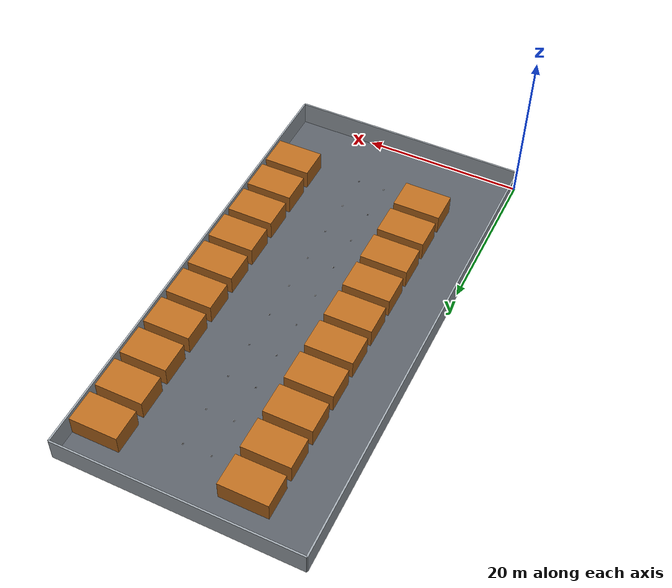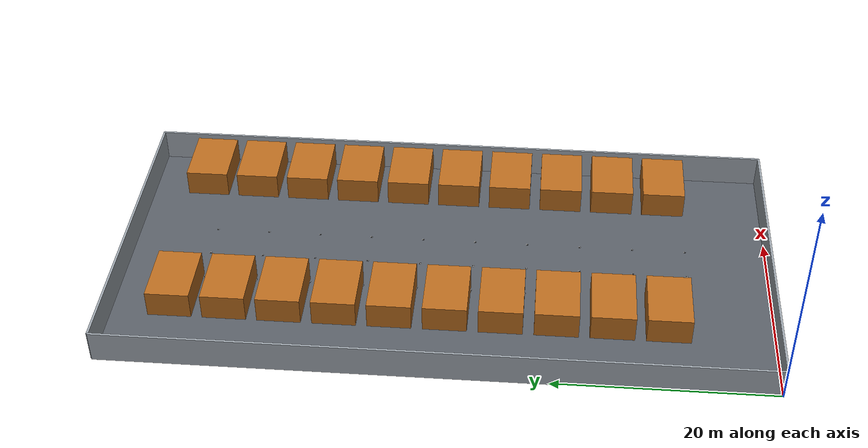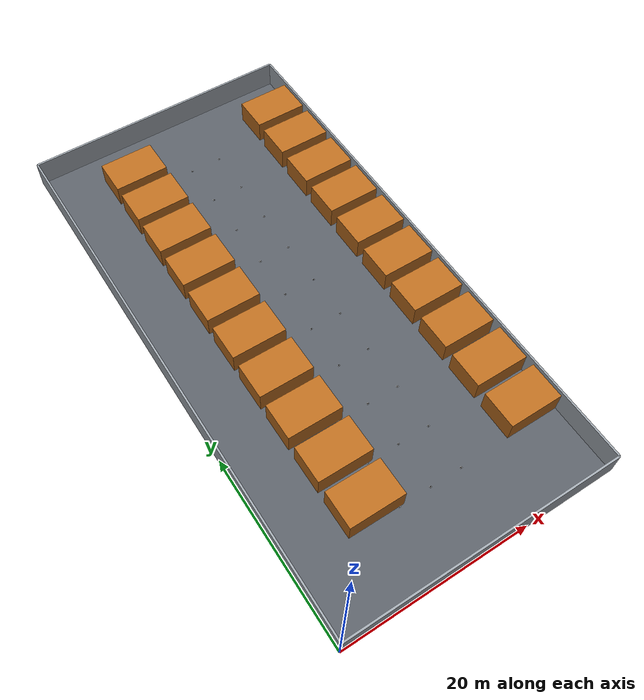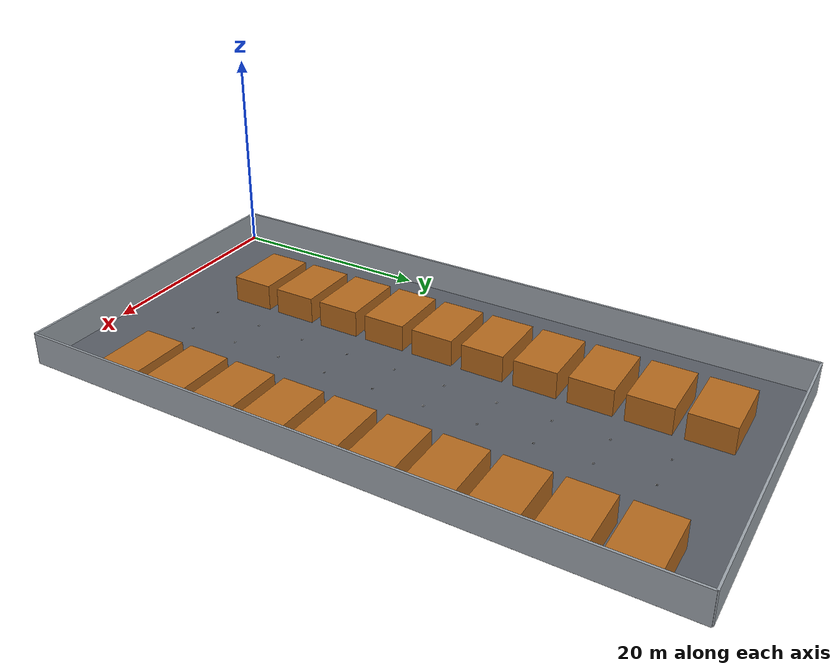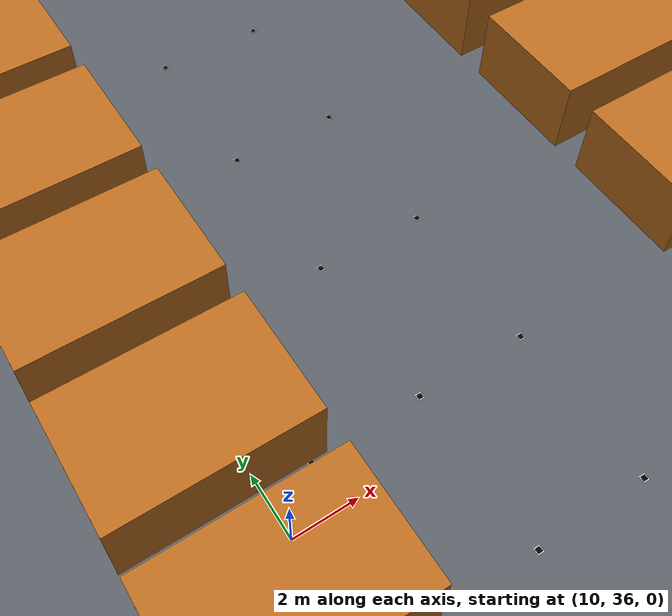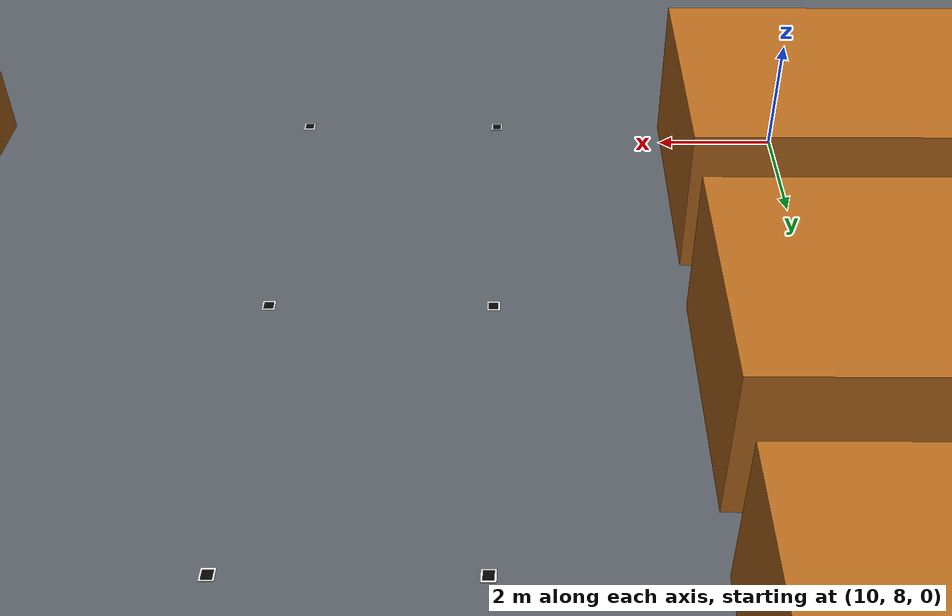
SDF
<?xml version="1.0"?>
<sdf version="1.6">
  <world name="warehouse_generated">
    <gravity>0 0 -9.81</gravity>
    <include><uri>model://sun</uri></include>
    <model name="floor_1">
      <static>true</static><pose>0 0 0 0 0 0</pose>
      <link name="link">
        <visual name="visual"><geometry><mesh><uri>file:///home/yahboom/swerve_bringup/generated/maps/WH-TEST-01/12/gazebo/models/floor_1/mesh.obj</uri><scale>1 1 1</scale></mesh></geometry><material><ambient>0.35 0.37 0.40 1</ambient><diffuse>0.35 0.37 0.40 1</diffuse></material></visual>
        <collision name="collision"><geometry><mesh><uri>file:///home/yahboom/swerve_bringup/generated/maps/WH-TEST-01/12/gazebo/models/floor_1/mesh.obj</uri><scale>1 1 1</scale></mesh></geometry></collision>
      </link>
    </model>
    <model name="floor_1_boundary_wall_0">
      <static>true</static>
      <pose>15 0 1.5 0 0 0</pose>
      <link name="link">
        <visual name="visual"><geometry><box><size>30 0.2 3</size></box></geometry><material><ambient>0.62 0.65 0.68 1</ambient><diffuse>0.62 0.65 0.68 1</diffuse></material></visual>
        <collision name="collision"><geometry><box><size>30 0.2 3</size></box></geometry></collision>
      </link>
    </model>
    <model name="floor_1_boundary_wall_1">
      <static>true</static>
      <pose>30 30 1.5 0 0 1.57079633</pose>
      <link name="link">
        <visual name="visual"><geometry><box><size>60 0.2 3</size></box></geometry><material><ambient>0.62 0.65 0.68 1</ambient><diffuse>0.62 0.65 0.68 1</diffuse></material></visual>
        <collision name="collision"><geometry><box><size>60 0.2 3</size></box></geometry></collision>
      </link>
    </model>
    <model name="floor_1_boundary_wall_2">
      <static>true</static>
      <pose>15 60 1.5 0 0 3.14159265</pose>
      <link name="link">
        <visual name="visual"><geometry><box><size>30 0.2 3</size></box></geometry><material><ambient>0.62 0.65 0.68 1</ambient><diffuse>0.62 0.65 0.68 1</diffuse></material></visual>
        <collision name="collision"><geometry><box><size>30 0.2 3</size></box></geometry></collision>
      </link>
    </model>
    <model name="floor_1_boundary_wall_3">
      <static>true</static>
      <pose>0 30 1.5 0 0 -1.57079633</pose>
      <link name="link">
        <visual name="visual"><geometry><box><size>60 0.2 3</size></box></geometry><material><ambient>0.62 0.65 0.68 1</ambient><diffuse>0.62 0.65 0.68 1</diffuse></material></visual>
        <collision name="collision"><geometry><box><size>60 0.2 3</size></box></geometry></collision>
      </link>
    </model>
    <model name="rack_SHELF-L01">
      <static>true</static>
      <pose>9 9.5 1.25 0 0 0</pose>
      <link name="link">
        <visual name="visual"><geometry><box><size>6 4 2.5</size></box></geometry><material><ambient>0.72 0.42 0.12 1</ambient><diffuse>0.72 0.42 0.12 1</diffuse></material></visual>
        <collision name="collision"><geometry><box><size>6 4 2.5</size></box></geometry></collision>
      </link>
    </model>
    <model name="rack_SHELF-R01">
      <static>true</static>
      <pose>27 9.5 1.25 0 0 0</pose>
      <link name="link">
        <visual name="visual"><geometry><box><size>6 4 2.5</size></box></geometry><material><ambient>0.72 0.42 0.12 1</ambient><diffuse>0.72 0.42 0.12 1</diffuse></material></visual>
        <collision name="collision"><geometry><box><size>6 4 2.5</size></box></geometry></collision>
      </link>
    </model>
    <model name="rack_SHELF-L02">
      <static>true</static>
      <pose>9 14.5 1.25 0 0 0</pose>
      <link name="link">
        <visual name="visual"><geometry><box><size>6 4 2.5</size></box></geometry><material><ambient>0.72 0.42 0.12 1</ambient><diffuse>0.72 0.42 0.12 1</diffuse></material></visual>
        <collision name="collision"><geometry><box><size>6 4 2.5</size></box></geometry></collision>
      </link>
    </model>
    <model name="rack_SHELF-R02">
      <static>true</static>
      <pose>27 14.5 1.25 0 0 0</pose>
      <link name="link">
        <visual name="visual"><geometry><box><size>6 4 2.5</size></box></geometry><material><ambient>0.72 0.42 0.12 1</ambient><diffuse>0.72 0.42 0.12 1</diffuse></material></visual>
        <collision name="collision"><geometry><box><size>6 4 2.5</size></box></geometry></collision>
      </link>
    </model>
    <model name="rack_SHELF-L03">
      <static>true</static>
      <pose>9 19.5 1.25 0 0 0</pose>
      <link name="link">
        <visual name="visual"><geometry><box><size>6 4 2.5</size></box></geometry><material><ambient>0.72 0.42 0.12 1</ambient><diffuse>0.72 0.42 0.12 1</diffuse></material></visual>
        <collision name="collision"><geometry><box><size>6 4 2.5</size></box></geometry></collision>
      </link>
    </model>
    <model name="rack_SHELF-R03">
      <static>true</static>
      <pose>27 19.5 1.25 0 0 0</pose>
      <link name="link">
        <visual name="visual"><geometry><box><size>6 4 2.5</size></box></geometry><material><ambient>0.72 0.42 0.12 1</ambient><diffuse>0.72 0.42 0.12 1</diffuse></material></visual>
        <collision name="collision"><geometry><box><size>6 4 2.5</size></box></geometry></collision>
      </link>
    </model>
    <model name="rack_SHELF-L04">
      <static>true</static>
      <pose>9 24.5 1.25 0 0 0</pose>
      <link name="link">
        <visual name="visual"><geometry><box><size>6 4 2.5</size></box></geometry><material><ambient>0.72 0.42 0.12 1</ambient><diffuse>0.72 0.42 0.12 1</diffuse></material></visual>
        <collision name="collision"><geometry><box><size>6 4 2.5</size></box></geometry></collision>
      </link>
    </model>
    <model name="rack_SHELF-R04">
      <static>true</static>
      <pose>27 24.5 1.25 0 0 0</pose>
      <link name="link">
        <visual name="visual"><geometry><box><size>6 4 2.5</size></box></geometry><material><ambient>0.72 0.42 0.12 1</ambient><diffuse>0.72 0.42 0.12 1</diffuse></material></visual>
        <collision name="collision"><geometry><box><size>6 4 2.5</size></box></geometry></collision>
      </link>
    </model>
    <model name="rack_SHELF-L05">
      <static>true</static>
      <pose>9 29.5 1.25 0 0 0</pose>
      <link name="link">
        <visual name="visual"><geometry><box><size>6 4 2.5</size></box></geometry><material><ambient>0.72 0.42 0.12 1</ambient><diffuse>0.72 0.42 0.12 1</diffuse></material></visual>
        <collision name="collision"><geometry><box><size>6 4 2.5</size></box></geometry></collision>
      </link>
    </model>
    <model name="rack_SHELF-R05">
      <static>true</static>
      <pose>27 29.5 1.25 0 0 0</pose>
      <link name="link">
        <visual name="visual"><geometry><box><size>6 4 2.5</size></box></geometry><material><ambient>0.72 0.42 0.12 1</ambient><diffuse>0.72 0.42 0.12 1</diffuse></material></visual>
        <collision name="collision"><geometry><box><size>6 4 2.5</size></box></geometry></collision>
      </link>
    </model>
    <model name="rack_SHELF-L06">
      <static>true</static>
      <pose>9 34.5 1.25 0 0 0</pose>
      <link name="link">
        <visual name="visual"><geometry><box><size>6 4 2.5</size></box></geometry><material><ambient>0.72 0.42 0.12 1</ambient><diffuse>0.72 0.42 0.12 1</diffuse></material></visual>
        <collision name="collision"><geometry><box><size>6 4 2.5</size></box></geometry></collision>
      </link>
    </model>
    <model name="rack_SHELF-R06">
      <static>true</static>
      <pose>27 34.5 1.25 0 0 0</pose>
      <link name="link">
        <visual name="visual"><geometry><box><size>6 4 2.5</size></box></geometry><material><ambient>0.72 0.42 0.12 1</ambient><diffuse>0.72 0.42 0.12 1</diffuse></material></visual>
        <collision name="collision"><geometry><box><size>6 4 2.5</size></box></geometry></collision>
      </link>
    </model>
    <model name="rack_SHELF-L07">
      <static>true</static>
      <pose>9 39.5 1.25 0 0 0</pose>
      <link name="link">
        <visual name="visual"><geometry><box><size>6 4 2.5</size></box></geometry><material><ambient>0.72 0.42 0.12 1</ambient><diffuse>0.72 0.42 0.12 1</diffuse></material></visual>
        <collision name="collision"><geometry><box><size>6 4 2.5</size></box></geometry></collision>
      </link>
    </model>
    <model name="rack_SHELF-R07">
      <static>true</static>
      <pose>27 39.5 1.25 0 0 0</pose>
      <link name="link">
        <visual name="visual"><geometry><box><size>6 4 2.5</size></box></geometry><material><ambient>0.72 0.42 0.12 1</ambient><diffuse>0.72 0.42 0.12 1</diffuse></material></visual>
        <collision name="collision"><geometry><box><size>6 4 2.5</size></box></geometry></collision>
      </link>
    </model>
    <model name="rack_SHELF-L08">
      <static>true</static>
      <pose>9 44.5 1.25 0 0 0</pose>
      <link name="link">
        <visual name="visual"><geometry><box><size>6 4 2.5</size></box></geometry><material><ambient>0.72 0.42 0.12 1</ambient><diffuse>0.72 0.42 0.12 1</diffuse></material></visual>
        <collision name="collision"><geometry><box><size>6 4 2.5</size></box></geometry></collision>
      </link>
    </model>
    <model name="rack_SHELF-R08">
      <static>true</static>
      <pose>27 44.5 1.25 0 0 0</pose>
      <link name="link">
        <visual name="visual"><geometry><box><size>6 4 2.5</size></box></geometry><material><ambient>0.72 0.42 0.12 1</ambient><diffuse>0.72 0.42 0.12 1</diffuse></material></visual>
        <collision name="collision"><geometry><box><size>6 4 2.5</size></box></geometry></collision>
      </link>
    </model>
    <model name="rack_SHELF-L09">
      <static>true</static>
      <pose>9 49.5 1.25 0 0 0</pose>
      <link name="link">
        <visual name="visual"><geometry><box><size>6 4 2.5</size></box></geometry><material><ambient>0.72 0.42 0.12 1</ambient><diffuse>0.72 0.42 0.12 1</diffuse></material></visual>
        <collision name="collision"><geometry><box><size>6 4 2.5</size></box></geometry></collision>
      </link>
    </model>
    <model name="rack_SHELF-R09">
      <static>true</static>
      <pose>27 49.5 1.25 0 0 0</pose>
      <link name="link">
        <visual name="visual"><geometry><box><size>6 4 2.5</size></box></geometry><material><ambient>0.72 0.42 0.12 1</ambient><diffuse>0.72 0.42 0.12 1</diffuse></material></visual>
        <collision name="collision"><geometry><box><size>6 4 2.5</size></box></geometry></collision>
      </link>
    </model>
    <model name="rack_SHELF-L10">
      <static>true</static>
      <pose>9 54.5 1.25 0 0 0</pose>
      <link name="link">
        <visual name="visual"><geometry><box><size>6 4 2.5</size></box></geometry><material><ambient>0.72 0.42 0.12 1</ambient><diffuse>0.72 0.42 0.12 1</diffuse></material></visual>
        <collision name="collision"><geometry><box><size>6 4 2.5</size></box></geometry></collision>
      </link>
    </model>
    <model name="rack_SHELF-R10">
      <static>true</static>
      <pose>27 54.5 1.25 0 0 0</pose>
      <link name="link">
        <visual name="visual"><geometry><box><size>6 4 2.5</size></box></geometry><material><ambient>0.72 0.42 0.12 1</ambient><diffuse>0.72 0.42 0.12 1</diffuse></material></visual>
        <collision name="collision"><geometry><box><size>6 4 2.5</size></box></geometry></collision>
      </link>
    </model>
    <model name="nav_tag_1101">
      <static>true</static><pose>11.5 7.5 0 0 0 1.57079633</pose>
      <link name="link">
        <visual name="substrate"><pose>0 0 0.003 0 0 0</pose><geometry><box><size>0.20 0.20 0.006</size></box></geometry><material><ambient>0.95 0.95 0.95 1</ambient><diffuse>0.95 0.95 0.95 1</diffuse></material></visual>
        <visual name="id_marker"><pose>0 0 0.007 0 0 0</pose><geometry><box><size>0.15 0.15 0.004</size></box></geometry><material><ambient>0.01 0.01 0.01 1</ambient><diffuse>0.01 0.01 0.01 1</diffuse></material></visual>
      </link>
    </model>
    <model name="nav_tag_1201">
      <static>true</static><pose>15 7.5 0 0 0 1.57079633</pose>
      <link name="link">
        <visual name="substrate"><pose>0 0 0.003 0 0 0</pose><geometry><box><size>0.20 0.20 0.006</size></box></geometry><material><ambient>0.95 0.95 0.95 1</ambient><diffuse>0.95 0.95 0.95 1</diffuse></material></visual>
        <visual name="id_marker"><pose>0 0 0.007 0 0 0</pose><geometry><box><size>0.15 0.15 0.004</size></box></geometry><material><ambient>0.01 0.01 0.01 1</ambient><diffuse>0.01 0.01 0.01 1</diffuse></material></visual>
      </link>
    </model>
    <model name="nav_tag_1301">
      <static>true</static><pose>18.5 7.5 0 0 0 1.57079633</pose>
      <link name="link">
        <visual name="substrate"><pose>0 0 0.003 0 0 0</pose><geometry><box><size>0.20 0.20 0.006</size></box></geometry><material><ambient>0.95 0.95 0.95 1</ambient><diffuse>0.95 0.95 0.95 1</diffuse></material></visual>
        <visual name="id_marker"><pose>0 0 0.007 0 0 0</pose><geometry><box><size>0.15 0.15 0.004</size></box></geometry><material><ambient>0.01 0.01 0.01 1</ambient><diffuse>0.01 0.01 0.01 1</diffuse></material></visual>
      </link>
    </model>
    <model name="nav_tag_1102">
      <static>true</static><pose>11.5 12.5 0 0 0 1.57079633</pose>
      <link name="link">
        <visual name="substrate"><pose>0 0 0.003 0 0 0</pose><geometry><box><size>0.20 0.20 0.006</size></box></geometry><material><ambient>0.95 0.95 0.95 1</ambient><diffuse>0.95 0.95 0.95 1</diffuse></material></visual>
        <visual name="id_marker"><pose>0 0 0.007 0 0 0</pose><geometry><box><size>0.15 0.15 0.004</size></box></geometry><material><ambient>0.01 0.01 0.01 1</ambient><diffuse>0.01 0.01 0.01 1</diffuse></material></visual>
      </link>
    </model>
    <model name="nav_tag_1202">
      <static>true</static><pose>15 12.5 0 0 0 1.57079633</pose>
      <link name="link">
        <visual name="substrate"><pose>0 0 0.003 0 0 0</pose><geometry><box><size>0.20 0.20 0.006</size></box></geometry><material><ambient>0.95 0.95 0.95 1</ambient><diffuse>0.95 0.95 0.95 1</diffuse></material></visual>
        <visual name="id_marker"><pose>0 0 0.007 0 0 0</pose><geometry><box><size>0.15 0.15 0.004</size></box></geometry><material><ambient>0.01 0.01 0.01 1</ambient><diffuse>0.01 0.01 0.01 1</diffuse></material></visual>
      </link>
    </model>
    <model name="nav_tag_1302">
      <static>true</static><pose>18.5 12.5 0 0 0 1.57079633</pose>
      <link name="link">
        <visual name="substrate"><pose>0 0 0.003 0 0 0</pose><geometry><box><size>0.20 0.20 0.006</size></box></geometry><material><ambient>0.95 0.95 0.95 1</ambient><diffuse>0.95 0.95 0.95 1</diffuse></material></visual>
        <visual name="id_marker"><pose>0 0 0.007 0 0 0</pose><geometry><box><size>0.15 0.15 0.004</size></box></geometry><material><ambient>0.01 0.01 0.01 1</ambient><diffuse>0.01 0.01 0.01 1</diffuse></material></visual>
      </link>
    </model>
    <model name="nav_tag_1103">
      <static>true</static><pose>11.5 17.5 0 0 0 1.57079633</pose>
      <link name="link">
        <visual name="substrate"><pose>0 0 0.003 0 0 0</pose><geometry><box><size>0.20 0.20 0.006</size></box></geometry><material><ambient>0.95 0.95 0.95 1</ambient><diffuse>0.95 0.95 0.95 1</diffuse></material></visual>
        <visual name="id_marker"><pose>0 0 0.007 0 0 0</pose><geometry><box><size>0.15 0.15 0.004</size></box></geometry><material><ambient>0.01 0.01 0.01 1</ambient><diffuse>0.01 0.01 0.01 1</diffuse></material></visual>
      </link>
    </model>
    <model name="nav_tag_1203">
      <static>true</static><pose>15 17.5 0 0 0 1.57079633</pose>
      <link name="link">
        <visual name="substrate"><pose>0 0 0.003 0 0 0</pose><geometry><box><size>0.20 0.20 0.006</size></box></geometry><material><ambient>0.95 0.95 0.95 1</ambient><diffuse>0.95 0.95 0.95 1</diffuse></material></visual>
        <visual name="id_marker"><pose>0 0 0.007 0 0 0</pose><geometry><box><size>0.15 0.15 0.004</size></box></geometry><material><ambient>0.01 0.01 0.01 1</ambient><diffuse>0.01 0.01 0.01 1</diffuse></material></visual>
      </link>
    </model>
    <model name="nav_tag_1303">
      <static>true</static><pose>18.5 17.5 0 0 0 1.57079633</pose>
      <link name="link">
        <visual name="substrate"><pose>0 0 0.003 0 0 0</pose><geometry><box><size>0.20 0.20 0.006</size></box></geometry><material><ambient>0.95 0.95 0.95 1</ambient><diffuse>0.95 0.95 0.95 1</diffuse></material></visual>
        <visual name="id_marker"><pose>0 0 0.007 0 0 0</pose><geometry><box><size>0.15 0.15 0.004</size></box></geometry><material><ambient>0.01 0.01 0.01 1</ambient><diffuse>0.01 0.01 0.01 1</diffuse></material></visual>
      </link>
    </model>
    <model name="nav_tag_1104">
      <static>true</static><pose>11.5 22.5 0 0 0 1.57079633</pose>
      <link name="link">
        <visual name="substrate"><pose>0 0 0.003 0 0 0</pose><geometry><box><size>0.20 0.20 0.006</size></box></geometry><material><ambient>0.95 0.95 0.95 1</ambient><diffuse>0.95 0.95 0.95 1</diffuse></material></visual>
        <visual name="id_marker"><pose>0 0 0.007 0 0 0</pose><geometry><box><size>0.15 0.15 0.004</size></box></geometry><material><ambient>0.01 0.01 0.01 1</ambient><diffuse>0.01 0.01 0.01 1</diffuse></material></visual>
      </link>
    </model>
    <model name="nav_tag_1204">
      <static>true</static><pose>15 22.5 0 0 0 1.57079633</pose>
      <link name="link">
        <visual name="substrate"><pose>0 0 0.003 0 0 0</pose><geometry><box><size>0.20 0.20 0.006</size></box></geometry><material><ambient>0.95 0.95 0.95 1</ambient><diffuse>0.95 0.95 0.95 1</diffuse></material></visual>
        <visual name="id_marker"><pose>0 0 0.007 0 0 0</pose><geometry><box><size>0.15 0.15 0.004</size></box></geometry><material><ambient>0.01 0.01 0.01 1</ambient><diffuse>0.01 0.01 0.01 1</diffuse></material></visual>
      </link>
    </model>
    <model name="nav_tag_1304">
      <static>true</static><pose>18.5 22.5 0 0 0 1.57079633</pose>
      <link name="link">
        <visual name="substrate"><pose>0 0 0.003 0 0 0</pose><geometry><box><size>0.20 0.20 0.006</size></box></geometry><material><ambient>0.95 0.95 0.95 1</ambient><diffuse>0.95 0.95 0.95 1</diffuse></material></visual>
        <visual name="id_marker"><pose>0 0 0.007 0 0 0</pose><geometry><box><size>0.15 0.15 0.004</size></box></geometry><material><ambient>0.01 0.01 0.01 1</ambient><diffuse>0.01 0.01 0.01 1</diffuse></material></visual>
      </link>
    </model>
    <model name="nav_tag_1105">
      <static>true</static><pose>11.5 27.5 0 0 0 1.57079633</pose>
      <link name="link">
        <visual name="substrate"><pose>0 0 0.003 0 0 0</pose><geometry><box><size>0.20 0.20 0.006</size></box></geometry><material><ambient>0.95 0.95 0.95 1</ambient><diffuse>0.95 0.95 0.95 1</diffuse></material></visual>
        <visual name="id_marker"><pose>0 0 0.007 0 0 0</pose><geometry><box><size>0.15 0.15 0.004</size></box></geometry><material><ambient>0.01 0.01 0.01 1</ambient><diffuse>0.01 0.01 0.01 1</diffuse></material></visual>
      </link>
    </model>
    <model name="nav_tag_1205">
      <static>true</static><pose>15 27.5 0 0 0 1.57079633</pose>
      <link name="link">
        <visual name="substrate"><pose>0 0 0.003 0 0 0</pose><geometry><box><size>0.20 0.20 0.006</size></box></geometry><material><ambient>0.95 0.95 0.95 1</ambient><diffuse>0.95 0.95 0.95 1</diffuse></material></visual>
        <visual name="id_marker"><pose>0 0 0.007 0 0 0</pose><geometry><box><size>0.15 0.15 0.004</size></box></geometry><material><ambient>0.01 0.01 0.01 1</ambient><diffuse>0.01 0.01 0.01 1</diffuse></material></visual>
      </link>
    </model>
    <model name="nav_tag_1305">
      <static>true</static><pose>18.5 27.5 0 0 0 1.57079633</pose>
      <link name="link">
        <visual name="substrate"><pose>0 0 0.003 0 0 0</pose><geometry><box><size>0.20 0.20 0.006</size></box></geometry><material><ambient>0.95 0.95 0.95 1</ambient><diffuse>0.95 0.95 0.95 1</diffuse></material></visual>
        <visual name="id_marker"><pose>0 0 0.007 0 0 0</pose><geometry><box><size>0.15 0.15 0.004</size></box></geometry><material><ambient>0.01 0.01 0.01 1</ambient><diffuse>0.01 0.01 0.01 1</diffuse></material></visual>
      </link>
    </model>
    <model name="nav_tag_1106">
      <static>true</static><pose>11.5 32.5 0 0 0 1.57079633</pose>
      <link name="link">
        <visual name="substrate"><pose>0 0 0.003 0 0 0</pose><geometry><box><size>0.20 0.20 0.006</size></box></geometry><material><ambient>0.95 0.95 0.95 1</ambient><diffuse>0.95 0.95 0.95 1</diffuse></material></visual>
        <visual name="id_marker"><pose>0 0 0.007 0 0 0</pose><geometry><box><size>0.15 0.15 0.004</size></box></geometry><material><ambient>0.01 0.01 0.01 1</ambient><diffuse>0.01 0.01 0.01 1</diffuse></material></visual>
      </link>
    </model>
    <model name="nav_tag_1206">
      <static>true</static><pose>15 32.5 0 0 0 1.57079633</pose>
      <link name="link">
        <visual name="substrate"><pose>0 0 0.003 0 0 0</pose><geometry><box><size>0.20 0.20 0.006</size></box></geometry><material><ambient>0.95 0.95 0.95 1</ambient><diffuse>0.95 0.95 0.95 1</diffuse></material></visual>
        <visual name="id_marker"><pose>0 0 0.007 0 0 0</pose><geometry><box><size>0.15 0.15 0.004</size></box></geometry><material><ambient>0.01 0.01 0.01 1</ambient><diffuse>0.01 0.01 0.01 1</diffuse></material></visual>
      </link>
    </model>
    <model name="nav_tag_1306">
      <static>true</static><pose>18.5 32.5 0 0 0 1.57079633</pose>
      <link name="link">
        <visual name="substrate"><pose>0 0 0.003 0 0 0</pose><geometry><box><size>0.20 0.20 0.006</size></box></geometry><material><ambient>0.95 0.95 0.95 1</ambient><diffuse>0.95 0.95 0.95 1</diffuse></material></visual>
        <visual name="id_marker"><pose>0 0 0.007 0 0 0</pose><geometry><box><size>0.15 0.15 0.004</size></box></geometry><material><ambient>0.01 0.01 0.01 1</ambient><diffuse>0.01 0.01 0.01 1</diffuse></material></visual>
      </link>
    </model>
    <model name="nav_tag_1107">
      <static>true</static><pose>11.5 37.5 0 0 0 1.57079633</pose>
      <link name="link">
        <visual name="substrate"><pose>0 0 0.003 0 0 0</pose><geometry><box><size>0.20 0.20 0.006</size></box></geometry><material><ambient>0.95 0.95 0.95 1</ambient><diffuse>0.95 0.95 0.95 1</diffuse></material></visual>
        <visual name="id_marker"><pose>0 0 0.007 0 0 0</pose><geometry><box><size>0.15 0.15 0.004</size></box></geometry><material><ambient>0.01 0.01 0.01 1</ambient><diffuse>0.01 0.01 0.01 1</diffuse></material></visual>
      </link>
    </model>
    <model name="nav_tag_1207">
      <static>true</static><pose>15 37.5 0 0 0 1.57079633</pose>
      <link name="link">
        <visual name="substrate"><pose>0 0 0.003 0 0 0</pose><geometry><box><size>0.20 0.20 0.006</size></box></geometry><material><ambient>0.95 0.95 0.95 1</ambient><diffuse>0.95 0.95 0.95 1</diffuse></material></visual>
        <visual name="id_marker"><pose>0 0 0.007 0 0 0</pose><geometry><box><size>0.15 0.15 0.004</size></box></geometry><material><ambient>0.01 0.01 0.01 1</ambient><diffuse>0.01 0.01 0.01 1</diffuse></material></visual>
      </link>
    </model>
    <model name="nav_tag_1307">
      <static>true</static><pose>18.5 37.5 0 0 0 1.57079633</pose>
      <link name="link">
        <visual name="substrate"><pose>0 0 0.003 0 0 0</pose><geometry><box><size>0.20 0.20 0.006</size></box></geometry><material><ambient>0.95 0.95 0.95 1</ambient><diffuse>0.95 0.95 0.95 1</diffuse></material></visual>
        <visual name="id_marker"><pose>0 0 0.007 0 0 0</pose><geometry><box><size>0.15 0.15 0.004</size></box></geometry><material><ambient>0.01 0.01 0.01 1</ambient><diffuse>0.01 0.01 0.01 1</diffuse></material></visual>
      </link>
    </model>
    <model name="nav_tag_1108">
      <static>true</static><pose>11.5 42.5 0 0 0 1.57079633</pose>
      <link name="link">
        <visual name="substrate"><pose>0 0 0.003 0 0 0</pose><geometry><box><size>0.20 0.20 0.006</size></box></geometry><material><ambient>0.95 0.95 0.95 1</ambient><diffuse>0.95 0.95 0.95 1</diffuse></material></visual>
        <visual name="id_marker"><pose>0 0 0.007 0 0 0</pose><geometry><box><size>0.15 0.15 0.004</size></box></geometry><material><ambient>0.01 0.01 0.01 1</ambient><diffuse>0.01 0.01 0.01 1</diffuse></material></visual>
      </link>
    </model>
    <model name="nav_tag_1208">
      <static>true</static><pose>15 42.5 0 0 0 1.57079633</pose>
      <link name="link">
        <visual name="substrate"><pose>0 0 0.003 0 0 0</pose><geometry><box><size>0.20 0.20 0.006</size></box></geometry><material><ambient>0.95 0.95 0.95 1</ambient><diffuse>0.95 0.95 0.95 1</diffuse></material></visual>
        <visual name="id_marker"><pose>0 0 0.007 0 0 0</pose><geometry><box><size>0.15 0.15 0.004</size></box></geometry><material><ambient>0.01 0.01 0.01 1</ambient><diffuse>0.01 0.01 0.01 1</diffuse></material></visual>
      </link>
    </model>
    <model name="nav_tag_1308">
      <static>true</static><pose>18.5 42.5 0 0 0 1.57079633</pose>
      <link name="link">
        <visual name="substrate"><pose>0 0 0.003 0 0 0</pose><geometry><box><size>0.20 0.20 0.006</size></box></geometry><material><ambient>0.95 0.95 0.95 1</ambient><diffuse>0.95 0.95 0.95 1</diffuse></material></visual>
        <visual name="id_marker"><pose>0 0 0.007 0 0 0</pose><geometry><box><size>0.15 0.15 0.004</size></box></geometry><material><ambient>0.01 0.01 0.01 1</ambient><diffuse>0.01 0.01 0.01 1</diffuse></material></visual>
      </link>
    </model>
    <model name="nav_tag_1109">
      <static>true</static><pose>11.5 47.5 0 0 0 1.57079633</pose>
      <link name="link">
        <visual name="substrate"><pose>0 0 0.003 0 0 0</pose><geometry><box><size>0.20 0.20 0.006</size></box></geometry><material><ambient>0.95 0.95 0.95 1</ambient><diffuse>0.95 0.95 0.95 1</diffuse></material></visual>
        <visual name="id_marker"><pose>0 0 0.007 0 0 0</pose><geometry><box><size>0.15 0.15 0.004</size></box></geometry><material><ambient>0.01 0.01 0.01 1</ambient><diffuse>0.01 0.01 0.01 1</diffuse></material></visual>
      </link>
    </model>
    <model name="nav_tag_1209">
      <static>true</static><pose>15 47.5 0 0 0 1.57079633</pose>
      <link name="link">
        <visual name="substrate"><pose>0 0 0.003 0 0 0</pose><geometry><box><size>0.20 0.20 0.006</size></box></geometry><material><ambient>0.95 0.95 0.95 1</ambient><diffuse>0.95 0.95 0.95 1</diffuse></material></visual>
        <visual name="id_marker"><pose>0 0 0.007 0 0 0</pose><geometry><box><size>0.15 0.15 0.004</size></box></geometry><material><ambient>0.01 0.01 0.01 1</ambient><diffuse>0.01 0.01 0.01 1</diffuse></material></visual>
      </link>
    </model>
    <model name="nav_tag_1309">
      <static>true</static><pose>18.5 47.5 0 0 0 1.57079633</pose>
      <link name="link">
        <visual name="substrate"><pose>0 0 0.003 0 0 0</pose><geometry><box><size>0.20 0.20 0.006</size></box></geometry><material><ambient>0.95 0.95 0.95 1</ambient><diffuse>0.95 0.95 0.95 1</diffuse></material></visual>
        <visual name="id_marker"><pose>0 0 0.007 0 0 0</pose><geometry><box><size>0.15 0.15 0.004</size></box></geometry><material><ambient>0.01 0.01 0.01 1</ambient><diffuse>0.01 0.01 0.01 1</diffuse></material></visual>
      </link>
    </model>
    <model name="nav_tag_1110">
      <static>true</static><pose>11.5 52.5 0 0 0 1.57079633</pose>
      <link name="link">
        <visual name="substrate"><pose>0 0 0.003 0 0 0</pose><geometry><box><size>0.20 0.20 0.006</size></box></geometry><material><ambient>0.95 0.95 0.95 1</ambient><diffuse>0.95 0.95 0.95 1</diffuse></material></visual>
        <visual name="id_marker"><pose>0 0 0.007 0 0 0</pose><geometry><box><size>0.15 0.15 0.004</size></box></geometry><material><ambient>0.01 0.01 0.01 1</ambient><diffuse>0.01 0.01 0.01 1</diffuse></material></visual>
      </link>
    </model>
    <model name="nav_tag_1210">
      <static>true</static><pose>15 52.5 0 0 0 1.57079633</pose>
      <link name="link">
        <visual name="substrate"><pose>0 0 0.003 0 0 0</pose><geometry><box><size>0.20 0.20 0.006</size></box></geometry><material><ambient>0.95 0.95 0.95 1</ambient><diffuse>0.95 0.95 0.95 1</diffuse></material></visual>
        <visual name="id_marker"><pose>0 0 0.007 0 0 0</pose><geometry><box><size>0.15 0.15 0.004</size></box></geometry><material><ambient>0.01 0.01 0.01 1</ambient><diffuse>0.01 0.01 0.01 1</diffuse></material></visual>
      </link>
    </model>
    <model name="nav_tag_1310">
      <static>true</static><pose>18.5 52.5 0 0 0 1.57079633</pose>
      <link name="link">
        <visual name="substrate"><pose>0 0 0.003 0 0 0</pose><geometry><box><size>0.20 0.20 0.006</size></box></geometry><material><ambient>0.95 0.95 0.95 1</ambient><diffuse>0.95 0.95 0.95 1</diffuse></material></visual>
        <visual name="id_marker"><pose>0 0 0.007 0 0 0</pose><geometry><box><size>0.15 0.15 0.004</size></box></geometry><material><ambient>0.01 0.01 0.01 1</ambient><diffuse>0.01 0.01 0.01 1</diffuse></material></visual>
      </link>
    </model>
  </world>
</sdf>
